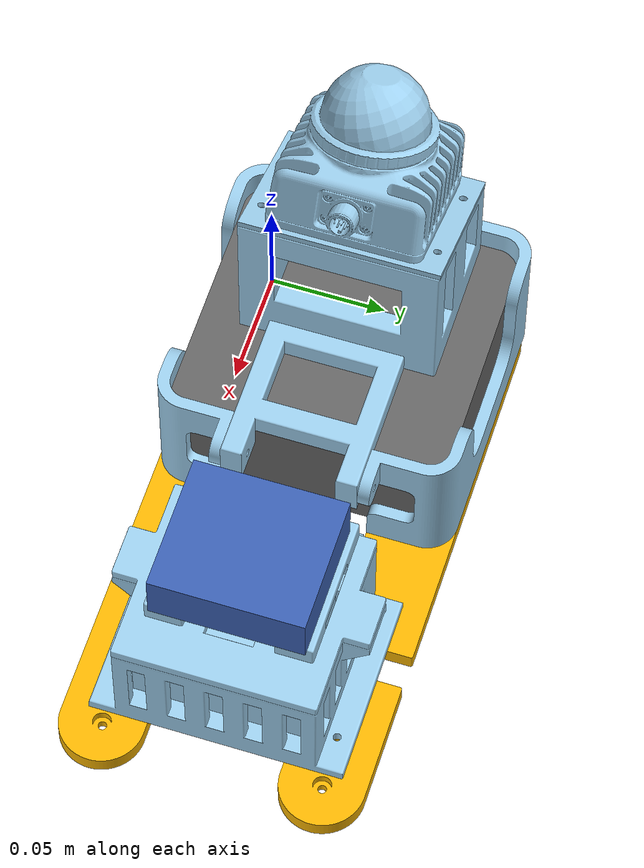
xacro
<robot xmlns:xacro="http://www.ros.org/wiki/xacro" name="onshape">
    <!-- Link mid-360_lidar_unit -->
    <link name="nuc_top">
        <inertial>
            <origin xyz="0.0917314 0.0455289 0.0511651" rpy="0 0 0"/>
            <mass value="1.44797"/>
            <inertia ixx="0.00366402" ixy="7.47421e-05" ixz="0.00161396" iyy="0.0102258" iyz="-1.7331e-05" izz="0.0084822"/>
        </inertial>
        <!-- Part mid-360_lidar_unit -->
        <visual>
            <origin xyz="0.0226974 0.0460004 0.112514" rpy="6.12323e-17 -0.383972 -1.8735e-16"/>
            <geometry>
                <mesh filename="file://$(find legged_perceptive_description)/urdf/nuc_and_lidar/mid_360_lidar_unit.stl"/>
            </geometry>
            <material name="mid-360_lidar_unit_material">
                <color rgba="0.615686 0.811765 0.929412 1.0"/>
            </material>
        </visual>
        <collision>
            <origin xyz="0.0226974 0.0460004 0.112514" rpy="6.12323e-17 -0.383972 -1.8735e-16"/>
            <geometry>
                <mesh filename="file://$(find legged_perceptive_description)/urdf/nuc_and_lidar/mid_360_lidar_unit.stl"/>
            </geometry>
        </collision>
        <!-- Part voltageregulatormount -->
        <visual>
            <origin xyz="0.1705 0.046 0.049" rpy="1.01161e-46 -2.30521e-16 -3.14159"/>
            <geometry>
                <mesh filename="file://$(find legged_perceptive_description)/urdf/nuc_and_lidar/voltageregulatormount.stl"/>
            </geometry>
            <material name="voltageregulatormount_material">
                <color rgba="0.615686 0.811765 0.929412 1.0"/>
            </material>
        </visual>
        <collision>
            <origin xyz="0.1705 0.046 0.049" rpy="1.01161e-46 -2.30521e-16 -3.14159"/>
            <geometry>
                <mesh filename="file://$(find legged_perceptive_description)/urdf/nuc_and_lidar/voltageregulatormount.stl"/>
            </geometry>
        </collision>
        <!-- Part nuctoplidarmount -->
        <visual>
            <origin xyz="0.0435 0.0745 0.0515" rpy="-3.14159 -1.18589e-31 3.14159"/>
            <geometry>
                <mesh filename="file://$(find legged_perceptive_description)/urdf/nuc_and_lidar/nuctoplidarmount.stl"/>
            </geometry>
            <material name="nuctoplidarmount_material">
                <color rgba="0.615686 0.811765 0.929412 1.0"/>
            </material>
        </visual>
        <collision>
            <origin xyz="0.0435 0.0745 0.0515" rpy="-3.14159 -1.18589e-31 3.14159"/>
            <geometry>
                <mesh filename="file://$(find legged_perceptive_description)/urdf/nuc_and_lidar/nuctoplidarmount.stl"/>
            </geometry>
        </collision>
        <!-- Part nuc -->
        <visual>
            <origin xyz="0.044 0.046 0.05" rpy="3.14159 -0 -1.5708"/>
            <geometry>
                <mesh filename="file://$(find legged_perceptive_description)/urdf/nuc_and_lidar/nuc.stl"/>
            </geometry>
            <material name="nuc_material">
                <color rgba="0.4 0.4 0.4 1.0"/>
            </material>
        </visual>
        <collision>
            <origin xyz="0.044 0.046 0.05" rpy="3.14159 -0 -1.5708"/>
            <geometry>
                <mesh filename="file://$(find legged_perceptive_description)/urdf/nuc_and_lidar/nuc.stl"/>
            </geometry>
        </collision>
        <!-- Part nuc_enclosure_side -->
        <visual>
            <origin xyz="0.1175 0.092 -2.60209e-18" rpy="0 -0 3.14159"/>
            <geometry>
                <mesh filename="file://$(find legged_perceptive_description)/urdf/nuc_and_lidar/nuc_enclosure_side.stl"/>
            </geometry>
            <material name="nuc_enclosure_side_material">
                <color rgba="0.615686 0.811765 0.929412 1.0"/>
            </material>
        </visual>
        <collision>
            <origin xyz="0.1175 0.092 -2.60209e-18" rpy="0 -0 3.14159"/>
            <geometry>
                <mesh filename="file://$(find legged_perceptive_description)/urdf/nuc_and_lidar/nuc_enclosure_side.stl"/>
            </geometry>
        </collision>
        <!-- Part nuc_enclosure_side_2 -->
        <visual>
            <origin xyz="-0.0305 5.58794e-11 0" rpy="0 -0 0"/>
            <geometry>
                <mesh filename="file://$(find legged_perceptive_description)/urdf/nuc_and_lidar/nuc_enclosure_side.stl"/>
            </geometry>
            <material name="nuc_enclosure_side_2_material">
                <color rgba="0.615686 0.811765 0.929412 1.0"/>
            </material>
        </visual>
        <collision>
            <origin xyz="-0.0305 5.58794e-11 0" rpy="0 -0 0"/>
            <geometry>
                <mesh filename="file://$(find legged_perceptive_description)/urdf/nuc_and_lidar/nuc_enclosure_side.stl"/>
            </geometry>
        </collision>
        <!-- Part lidarmetalmount -->
        <visual>
            <origin xyz="0.0234514 0.046 0.110648" rpy="-6.64698e-32 -0.383972 -1.73472e-16"/>
            <geometry>
                <mesh filename="file://$(find legged_perceptive_description)/urdf/nuc_and_lidar/lidarmetalmount.stl"/>
            </geometry>
            <material name="lidarmetalmount_material">
                <color rgba="0.615686 0.811765 0.929412 1.0"/>
            </material>
        </visual>
        <collision>
            <origin xyz="0.0234514 0.046 0.110648" rpy="-6.64698e-32 -0.383972 -1.73472e-16"/>
            <geometry>
                <mesh filename="file://$(find legged_perceptive_description)/urdf/nuc_and_lidar/lidarmetalmount.stl"/>
            </geometry>
        </collision>
        <!-- Part mounting_rail -->
        <visual>
            <origin xyz="0.10975 0.0745 -2.60209e-18" rpy="-6.16298e-33 -1.2326e-32 -2.77556e-17"/>
            <geometry>
                <mesh filename="file://$(find legged_perceptive_description)/urdf/nuc_and_lidar/mounting_rail.stl"/>
            </geometry>
            <material name="mounting_rail_material">
                <color rgba="0.980392 0.713725 0.00392157 1.0"/>
            </material>
        </visual>
        <collision>
            <origin xyz="0.10975 0.0745 -2.60209e-18" rpy="-6.16298e-33 -1.2326e-32 -2.77556e-17"/>
            <geometry>
                <mesh filename="file://$(find legged_perceptive_description)/urdf/nuc_and_lidar/mounting_rail.stl"/>
            </geometry>
        </collision>
        <!-- Part psu -->
        <visual>
            <origin xyz="0.169134 0.046 0.063" rpy="-2.30521e-16 -1.01161e-46 -1.5708"/>
            <geometry>
                <mesh filename="file://$(find legged_perceptive_description)/urdf/nuc_and_lidar/psu.stl"/>
            </geometry>
            <material name="psu_material">
                <color rgba="0.231373 0.380392 0.705882 1.0"/>
            </material>
        </visual>
        <collision>
            <origin xyz="0.169134 0.046 0.063" rpy="-2.30521e-16 -1.01161e-46 -1.5708"/>
            <geometry>
                <mesh filename="file://$(find legged_perceptive_description)/urdf/nuc_and_lidar/psu.stl"/>
            </geometry>
        </collision>
        <!-- Part battery -->
        <visual>
            <origin xyz="0.1725 0.008 0.026" rpy="-1.5708 2.30521e-16 0"/>
            <geometry>
                <mesh filename="file://$(find legged_perceptive_description)/urdf/nuc_and_lidar/battery.stl"/>
            </geometry>
            <material name="battery_material">
                <color rgba="0.615686 0.811765 0.929412 1.0"/>
            </material>
        </visual>
        <collision>
            <origin xyz="0.1725 0.008 0.026" rpy="-1.5708 2.30521e-16 0"/>
            <geometry>
                <mesh filename="file://$(find legged_perceptive_description)/urdf/nuc_and_lidar/battery.stl"/>
            </geometry>
        </collision>
        <!-- Part frame -->
        <visual>
            <origin xyz="0.00509571 0.0460605 0.15608" rpy="3.14159 0.383972 -3.14159"/>
            <geometry>
                <mesh filename="file://$(find legged_perceptive_description)/urdf/nuc_and_lidar/frame.stl"/>
            </geometry>
            <material name="frame_material">
                <color rgba="0.615686 0.811765 0.929412 1.0"/>
            </material>
        </visual>
        <collision>
            <origin xyz="0.00509571 0.0460605 0.15608" rpy="3.14159 0.383972 -3.14159"/>
            <geometry>
                <mesh filename="file://$(find legged_perceptive_description)/urdf/nuc_and_lidar/frame.stl"/>
            </geometry>
        </collision>
        <!-- Part mounting_rail_2 -->
        <visual>
            <origin xyz="0.10975 -0.0175 0" rpy="0 -0 0"/>
            <geometry>
                <mesh filename="file://$(find legged_perceptive_description)/urdf/nuc_and_lidar/mounting_rail.stl"/>
            </geometry>
            <material name="mounting_rail_2_material">
                <color rgba="0.980392 0.713725 0.00392157 1.0"/>
            </material>
        </visual>
        <collision>
            <origin xyz="0.10975 -0.0175 0" rpy="0 -0 0"/>
            <geometry>
                <mesh filename="file://$(find legged_perceptive_description)/urdf/nuc_and_lidar/mounting_rail.stl"/>
            </geometry>
        </collision>
        <!-- Part batterymount -->
        <visual>
            <origin xyz="0.1745 0.046 -6.93889e-18" rpy="-2.30521e-16 -0 -1.5708"/>
            <geometry>
                <mesh filename="file://$(find legged_perceptive_description)/urdf/nuc_and_lidar/batterymount.stl"/>
            </geometry>
            <material name="batterymount_material">
                <color rgba="0.615686 0.811765 0.929412 1.0"/>
            </material>
        </visual>
        <collision>
            <origin xyz="0.1745 0.046 -6.93889e-18" rpy="-2.30521e-16 -0 -1.5708"/>
            <geometry>
                <mesh filename="file://$(find legged_perceptive_description)/urdf/nuc_and_lidar/batterymount.stl"/>
            </geometry>
        </collision>
    </link>
    <!-- Frame livox -->
    <link name="lidar_frame"/>
    <joint name="lidar_frame_joint" type="fixed">
        <parent link="nuc_top"/>
        <child link="lidar_frame"/>
        <origin xyz="0.00509571 0.0460605 0.15608" rpy="0 0.383972 3.14159"/>
    </joint>
    <link name="lidar_imu_frame"/>
    <joint name="lidar_imu_joint" type="fixed">
        <parent link="lidar_frame"/>
        <child link="lidar_imu_frame"/>
        <!-- Extrinsics: translation from lidar_frame and identity rotation -->
        <origin xyz="0.011 0.02329 -0.04412" rpy="0 0 0"/>
    </joint>
</robot>
